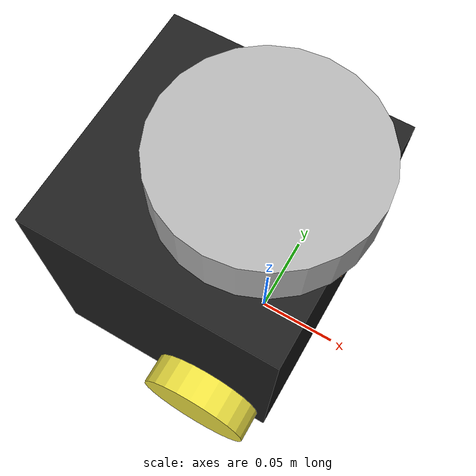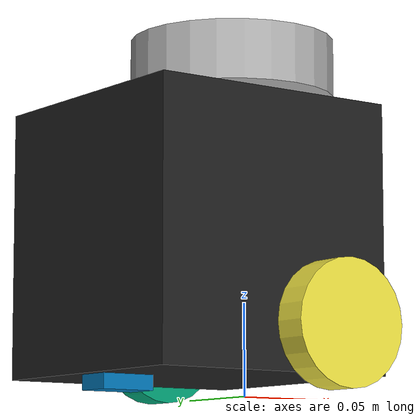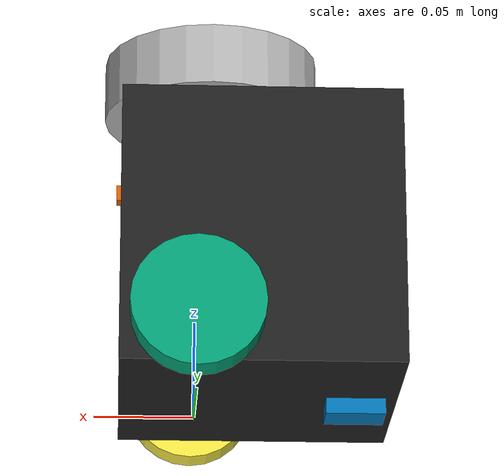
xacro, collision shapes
<?xml version="1.0" ?>
<robot name="turtlebot3_burger" xmlns:xacro="http://ros.org/wiki/xacro">
  <xacro:include
    filename="$(find turtlebot3_description)/urdf/common_properties.xacro"/>
  <xacro:include
    filename="$(find turtlebot3_description)/urdf/turtlebot3_burger.gazebo.xacro"/>

  <link name="base_footprint"/>

  <joint name="base_joint" type="fixed">
    <parent link="base_footprint"/>
    <child link="base_link"/>
    <origin xyz="0.0 0.0 0.010" rpy="0 0 0"/>
  </joint>

  <link name="base_link">
    <visual>
      <origin xyz="-0.032 0 0.0" rpy="0 0 0"/>
      <geometry>
        <mesh filename="package://turtlebot3_description/meshes/bases/burger_base.stl"
          scale="0.001 0.001 0.001"/>
      </geometry>
      <material name="light_black"/>
    </visual>

    <collision>
      <origin xyz="-0.032 0 0.070" rpy="0 0 0"/>
      <geometry>
        <box size="0.140 0.140 0.143"/>
      </geometry>
    </collision>

    <inertial>
      <origin xyz="0 0 0" rpy="0 0 0"/>
      <mass value="8.2573504e-01"/>
      <inertia ixx="2.2124416e-03" ixy="-1.2294101e-05" ixz="3.4938785e-05"
               iyy="2.1193702e-03" iyz="-5.0120904e-06"
               izz="2.0064271e-03" />
    </inertial>
  </link>

  <joint name="wheel_left_joint" type="continuous">
    <parent link="base_link"/>
    <child link="wheel_left_link"/>
    <origin xyz="0.0 0.08 0.023" rpy="-1.57 0 0"/>
    <axis xyz="0 0 1"/>
  </joint>

  <link name="wheel_left_link">
    <visual>
      <origin xyz="0 0 0" rpy="1.57 0 0"/>
      <geometry>
        <mesh filename="package://turtlebot3_description/meshes/wheels/left_tire.stl"
          scale="0.001 0.001 0.001"/>
      </geometry>
      <material name="dark"/>
    </visual>

    <collision>
      <origin xyz="0 0 0" rpy="0 0 0"/>
      <geometry>
        <cylinder length="0.018" radius="0.033"/>
      </geometry>
    </collision>

    <inertial>
      <origin xyz="0 0 0" />
      <mass value="2.8498940e-02" />
      <inertia ixx="1.1175580e-05" ixy="-4.2369783e-11" ixz="-5.9381719e-09"
               iyy="1.1192413e-05" iyz="-1.4400107e-11"
               izz="2.0712558e-05" />
      </inertial>
  </link>

  <joint name="wheel_right_joint" type="continuous">
    <parent link="base_link"/>
    <child link="wheel_right_link"/>
    <origin xyz="0.0 -0.080 0.023" rpy="-1.57 0 0"/>
    <axis xyz="0 0 1"/>
  </joint>

  <link name="wheel_right_link">
    <visual>
      <origin xyz="0 0 0" rpy="1.57 0 0"/>
      <geometry>
        <mesh filename="package://turtlebot3_description/meshes/wheels/right_tire.stl"
          scale="0.001 0.001 0.001"/>
      </geometry>
      <material name="dark"/>
    </visual>

    <collision>
      <origin xyz="0 0 0" rpy="0 0 0"/>
      <geometry>
        <cylinder length="0.018" radius="0.033"/>
      </geometry>
    </collision>

    <inertial>
      <origin xyz="0 0 0" />
      <mass value="2.8498940e-02" />
      <inertia ixx="1.1175580e-05" ixy="-4.2369783e-11" ixz="-5.9381719e-09"
               iyy="1.1192413e-05" iyz="-1.4400107e-11"
               izz="2.0712558e-05" />
      </inertial>
  </link>

  <joint name="caster_back_joint" type="fixed">
    <parent link="base_link"/>
    <child link="caster_back_link"/>
    <origin xyz="-0.081 0 -0.004" rpy="-1.57 0 0"/>
  </joint>

  <link name="caster_back_link">
    <collision>
      <origin xyz="0 0.001 0" rpy="0 0 0"/>
      <geometry>
        <box size="0.030 0.009 0.020"/>
      </geometry>
    </collision>

    <inertial>
      <origin xyz="0 0 0" />
      <mass value="0.005" />
      <inertia ixx="0.001" ixy="0.0" ixz="0.0"
               iyy="0.001" iyz="0.0"
               izz="0.001" />
    </inertial>
  </link>

  <joint name="camera_joint" type="fixed">
    <parent link="base_link"/>
    <child link="camera_link"/>
    <origin xyz="0.035 0 0.109" rpy="0 0 0"/>
  </joint>

  <link name="camera_link">
    <visual>
      <origin xyz="0.0027 0 0" rpy="0 0 0"/>
      <geometry>
        <box size="0.0054 0.008 0.008"/>
      </geometry>
      <material name="dark"/>
    </visual>
    <collision>
      <origin xyz="0.0027 0 0" rpy="0 0 0"/>
      <geometry>
        <box size="0.0054 0.008 0.008"/>
      </geometry>
    </collision>

    <inertial>
      <origin xyz="0 0 0" />
      <!-- I haven't measured the weight of the camera -->
      <mass value="0.005" />
      <inertia ixx="0.001" ixy="0.0" ixz="0.0"
               iyy="0.001" iyz="0.0"
               izz="0.001" />
    </inertial>
  </link>

  <joint name="imu_joint" type="fixed">
    <parent link="base_link"/>
    <child link="imu_link"/>
    <origin xyz="-0.032 0 0.068" rpy="0 0 0"/>
  </joint>

  <link name="imu_link"/>

  <joint name="scan_joint" type="fixed">
    <parent link="base_link"/>
    <child link="base_scan"/>
    <origin xyz="-0.02297 0 0.17252" rpy="0 0 0"/>
  </joint>

  <link name="base_scan">
    <!-- Not up to date mesh. That's the turtlebot3's LDS mesh -->
    <visual>
      <origin xyz="0 0 0" rpy="0 0 0"/>
      <geometry>
        <cylinder length="0.04" radius="0.03785"/>
      </geometry>
      <material name="dark"/>
    </visual>

    <!-- Not up to date collision geometry.
         That's the one from the turtlebot3's LDS !-->
    <collision>
      <origin xyz="0.015 0 -0.0065" rpy="0 0 0"/>
      <geometry>
        <cylinder length="0.0315" radius="0.055"/>
      </geometry>
    </collision>

    <inertial>
      <mass value="0.190" />
      <origin xyz="0 0 0" />
      <inertia ixx="0.001" ixy="0.0" ixz="0.0"
               iyy="0.001" iyz="0.0"
               izz="0.001" />
    </inertial>
  </link>

</robot>
